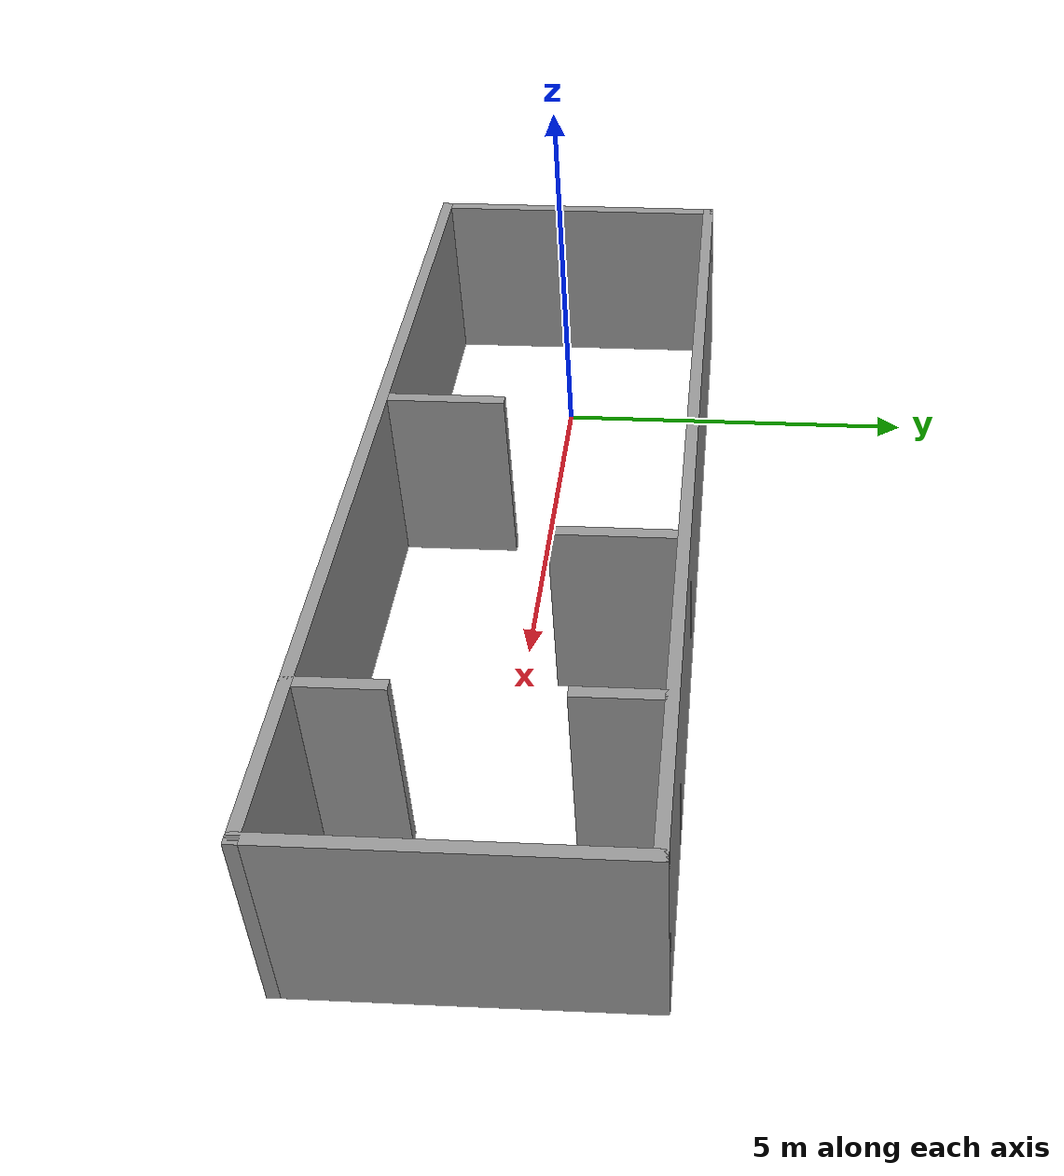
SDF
<?xml version='1.0'?>
<sdf version='1.6'>
  <model name='racetrack-s'>
    <pose frame=''>4 0 0 0 -0 0</pose>
    <link name='Wall_12'>
      <collision name='Wall_12_Collision'>
        <geometry>
          <box>
            <size>1.15 0.15 2.5</size>
          </box>
        </geometry>
        <pose frame=''>0 0 1.25 0 -0 0</pose>
      </collision>
      <visual name='Wall_12_Visual'>
        <pose frame=''>0 0 1.25 0 -0 0</pose>
        <geometry>
          <box>
            <size>1.15 0.15 2.5</size>
          </box>
        </geometry>
        <material>
          <script>
            <uri>file://media/materials/scripts/gazebo.material</uri>
            <name>Gazebo/Grey</name>
          </script>
          <ambient>1 1 1 1</ambient>
        </material>
        <meta>
          <layer>0</layer>
        </meta>
      </visual>
      <pose frame=''>4 1.5 0 0 -0 -1.5708</pose>
    </link>
    <link name='Wall_14'>
      <collision name='Wall_14_Collision'>
        <geometry>
          <box>
            <size>1.15 0.15 2.5</size>
          </box>
        </geometry>
        <pose frame=''>0 0 1.25 0 -0 0</pose>
      </collision>
      <visual name='Wall_14_Visual'>
        <pose frame=''>0 0 1.25 0 -0 0</pose>
        <geometry>
          <box>
            <size>1.15 0.15 2.5</size>
          </box>
        </geometry>
        <material>
          <script>
            <uri>file://media/materials/scripts/gazebo.material</uri>
            <name>Gazebo/Grey</name>
          </script>
          <ambient>1 1 1 1</ambient>
        </material>
        <meta>
          <layer>0</layer>
        </meta>
      </visual>
      <pose frame=''>4 -1.5 0 0 -0 1.5708</pose>
    </link>
    <link name='Wall_16'>
      <collision name='Wall_16_Collision'>
        <geometry>
          <box>
            <size>1.65 0.15 2.5</size>
          </box>
        </geometry>
        <pose frame=''>0 0 1.25 0 -0 0</pose>
      </collision>
      <visual name='Wall_16_Visual'>
        <pose frame=''>0 0 1.25 0 -0 0</pose>
        <geometry>
          <box>
            <size>1.65 0.15 2.5</size>
          </box>
        </geometry>
        <material>
          <script>
            <uri>file://media/materials/scripts/gazebo.material</uri>
            <name>Gazebo/Grey</name>
          </script>
          <ambient>1 1 1 1</ambient>
        </material>
        <meta>
          <layer>0</layer>
        </meta>
      </visual>
      <pose frame=''>1.5 1.25 0 0 -0 -1.5708</pose>
    </link>
    <link name='Wall_19'>
      <collision name='Wall_19_Collision'>
        <geometry>
          <box>
            <size>1.65 0.15 2.5</size>
          </box>
        </geometry>
        <pose frame=''>0 0 1.25 0 -0 0</pose>
      </collision>
      <visual name='Wall_19_Visual'>
        <pose frame=''>0 0 1.25 0 -0 0</pose>
        <geometry>
          <box>
            <size>1.65 0.15 2.5</size>
          </box>
        </geometry>
        <material>
          <script>
            <uri>file://media/materials/scripts/gazebo.material</uri>
            <name>Gazebo/Grey</name>
          </script>
          <ambient>1 1 1 1</ambient>
        </material>
        <meta>
          <layer>0</layer>
        </meta>
      </visual>
      <pose frame=''>-1 -1.25 0 0 -0 1.5708</pose>
    </link>
    <link name='Wall_3'>
      <collision name='Wall_3_Collision'>
        <geometry>
          <box>
            <size>4.15 0.15 2.5</size>
          </box>
        </geometry>
        <pose frame=''>0 0 1.25 0 -0 0</pose>
      </collision>
      <visual name='Wall_3_Visual'>
        <pose frame=''>0 0 1.25 0 -0 0</pose>
        <geometry>
          <box>
            <size>4.15 0.15 2.5</size>
          </box>
        </geometry>
        <material>
          <script>
            <uri>file://media/materials/scripts/gazebo.material</uri>
            <name>Gazebo/Grey</name>
          </script>
          <ambient>1 1 1 1</ambient>
        </material>
        <meta>
          <layer>0</layer>
        </meta>
      </visual>
      <pose frame=''>-6 0 0 0 -0 1.5708</pose>
    </link>
    <link name='Wall_5'>
      <collision name='Wall_5_Collision'>
        <geometry>
          <box>
            <size>12.15 0.15 2.5</size>
          </box>
        </geometry>
        <pose frame=''>0 0 1.25 0 -0 0</pose>
      </collision>
      <visual name='Wall_5_Visual'>
        <pose frame=''>0 0 1.25 0 -0 0</pose>
        <geometry>
          <box>
            <size>12.15 0.15 2.5</size>
          </box>
        </geometry>
        <material>
          <script>
            <uri>file://media/materials/scripts/gazebo.material</uri>
            <name>Gazebo/Grey</name>
          </script>
          <ambient>1 1 1 1</ambient>
        </material>
        <meta>
          <layer>0</layer>
        </meta>
      </visual>
      <pose frame=''>0 2 0 0 -0 0</pose>
    </link>
    <link name='Wall_7'>
      <collision name='Wall_7_Collision'>
        <geometry>
          <box>
            <size>12.15 0.15 2.5</size>
          </box>
        </geometry>
        <pose frame=''>0 0 1.25 0 -0 0</pose>
      </collision>
      <visual name='Wall_7_Visual'>
        <pose frame=''>0 0 1.25 0 -0 0</pose>
        <geometry>
          <box>
            <size>12.15 0.15 2.5</size>
          </box>
        </geometry>
        <material>
          <script>
            <uri>file://media/materials/scripts/gazebo.material</uri>
            <name>Gazebo/Grey</name>
          </script>
          <ambient>1 1 1 1</ambient>
        </material>
        <meta>
          <layer>0</layer>
        </meta>
      </visual>
      <pose frame=''>0 -2 0 0 -0 0</pose>
    </link>
    <link name='Wall_9'>
      <collision name='Wall_9_Collision'>
        <geometry>
          <box>
            <size>4.15 0.15 2.5</size>
          </box>
        </geometry>
        <pose frame=''>0 0 1.25 0 -0 0</pose>
      </collision>
      <visual name='Wall_9_Visual'>
        <pose frame=''>0 0 1.25 0 -0 0</pose>
        <geometry>
          <box>
            <size>4.15 0.15 2.5</size>
          </box>
        </geometry>
        <material>
          <script>
            <uri>file://media/materials/scripts/gazebo.material</uri>
            <name>Gazebo/Grey</name>
          </script>
          <ambient>1 1 1 1</ambient>
        </material>
        <meta>
          <layer>0</layer>
        </meta>
      </visual>
      <pose frame=''>6 0 0 0 -0 -1.5708</pose>
    </link>
    <static>1</static>
  </model>
</sdf>
